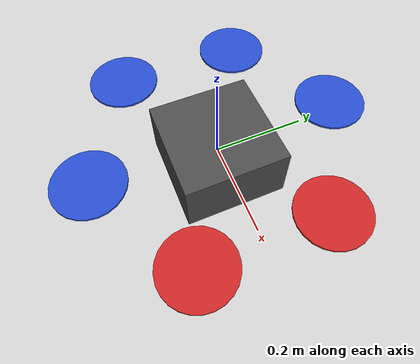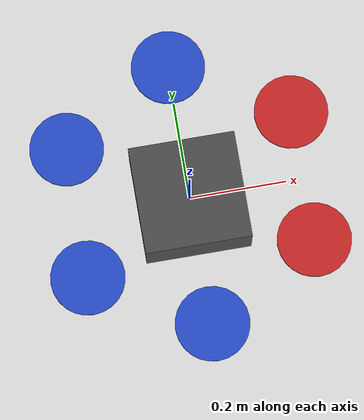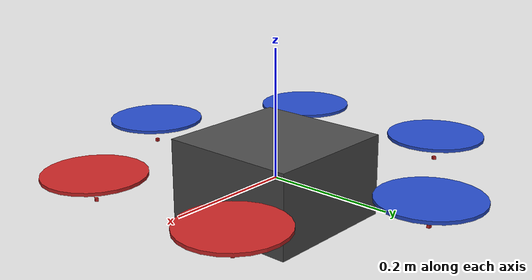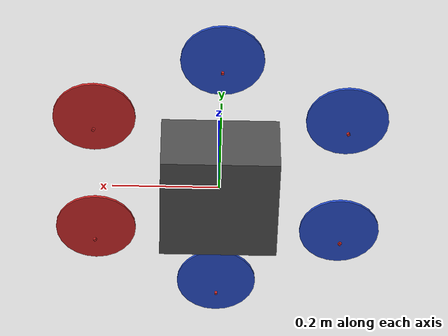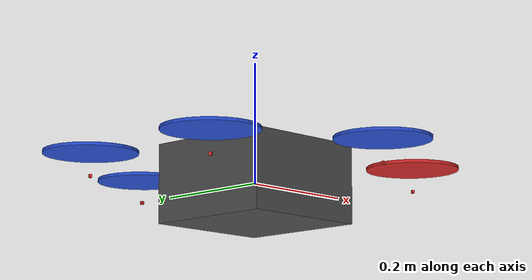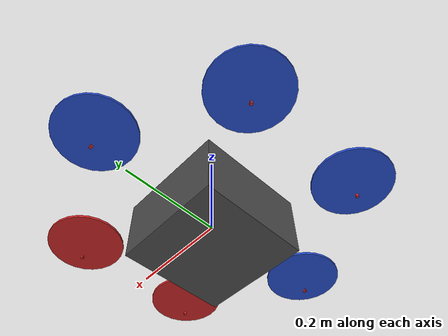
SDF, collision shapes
<sdf version='1.6'>
  <model name='mockingbird'>
    <link name='mockingbird/base_link'>
      <pose frame=''>0 0 0 0 -0 0</pose>
      <inertial>
        <pose frame=''>0 0 0 0 -0 0</pose>
        <mass>1.63543</mass>
        <inertia>
          <ixx>0.0126419</ixx>
          <ixy>4.49001e-05</ixy>
          <ixz>0.000123606</ixz>
          <iyy>0.0127501</iyy>
          <iyz>-1.81831e-05</iyz>
          <izz>0.0230749</izz>
        </inertia>
      </inertial>
      <collision name='mockingbird/base_link_inertia_collision'>
        <pose frame=''>0 0 0 0 -0 0</pose>
        <geometry>
          <box>
            <size>0.22 0.22 0.13</size>
          </box>
        </geometry>
        <surface>
          <contact>
            <ode/>
          </contact>
          <friction>
            <ode/>
          </friction>
        </surface>
      </collision>
      <visual name='mockingbird/base_link_inertia_visual'>
        <pose frame=''>0 0 0 0 -0 0</pose>
        <geometry>
          <mesh>
            <scale>1 1 1</scale>
            <uri>model://rotors_description/meshes/mockingbird_core.dae</uri>
          </mesh>
        </geometry>
        <material>
          <script>
            <name>Gazebo/DarkGrey</name>
            <uri>file://media/materials/scripts/gazebo.material</uri>
          </script>
        </material>
      </visual>
      <gravity>1</gravity>
      <velocity_decay/>
      <self_collide>0</self_collide>
    </link>
    <link name='mockingbird/rotor_unit_0'>
      <pose frame=''>0.233827 0.135 0 0 -0 0.523599</pose>
      <inertial>
        <pose frame=''>0 0 0 0 -0 0</pose>
        <mass>0.097214</mass>
        <inertia>
          <ixx>0.000247269</ixx>
          <ixy>0</ixy>
          <ixz>0</ixz>
          <iyy>0.000332246</iyy>
          <iyz>0</iyz>
          <izz>0.000247859</izz>
        </inertia>
      </inertial>
      <collision name='mockingbird/rotor_unit_0_collision'>
        <pose frame=''>0 0 0 0 -0 0</pose>
        <geometry>
          <box>
            <size>0.005 0.005 0.005</size>
          </box>
        </geometry>
        <surface>
          <contact>
            <ode/>
          </contact>
          <friction>
            <ode/>
          </friction>
        </surface>
      </collision>
      <visual name='mockingbird/rotor_unit_0_visual'>
        <pose frame=''>0 0 0 0 -0 0</pose>
        <geometry>
          <mesh>
            <scale>1 1 1</scale>
            <uri>model://rotors_description/meshes/mockingbird_rotorunit.dae</uri>
          </mesh>
        </geometry>
        <material>
          <script>
            <name>Gazebo/Red</name>
            <uri>file://media/materials/scripts/gazebo.material</uri>
          </script>
        </material>
      </visual>
      <gravity>1</gravity>
      <velocity_decay/>
      <self_collide>0</self_collide>
    </link>
    <joint name='rotor_unit_0_revolutejoint' type='revolute'>
      <child>mockingbird/rotor_unit_0</child>
      <parent>mockingbird/base_link</parent>
      <axis>
        <xyz>0.866025 0.5 0</xyz>
        <limit>
          <lower>-0.3</lower>
          <upper>0.3</upper>
          <effort>1000</effort>
          <velocity>4</velocity>
        </limit>
        <dynamics>
          <spring_reference>0</spring_reference>
          <spring_stiffness>0</spring_stiffness>
        </dynamics>
        <use_parent_model_frame>1</use_parent_model_frame>
      </axis>
    </joint>
    <link name='mockingbird/rotor_0'>
      <pose frame=''>0.233827 0.135 0.038 0 -0 0.523599</pose>
      <inertial>
        <pose frame=''>0 0 0 0 -0 0</pose>
        <mass>0.004</mass>
        <inertia>
          <ixx>7.8e-07</ixx>
          <ixy>0</ixy>
          <ixz>0</ixz>
          <iyy>1.95375e-05</iyy>
          <iyz>0</iyz>
          <izz>2.02575e-05</izz>
        </inertia>
      </inertial>
      <collision name='mockingbird/rotor_0_collision'>
        <pose frame=''>0 0 0 0 -0 0</pose>
        <geometry>
          <cylinder>
            <length>0.005</length>
            <radius>0.0765</radius>
          </cylinder>
        </geometry>
        <surface>
          <contact>
            <ode/>
          </contact>
          <friction>
            <ode/>
          </friction>
        </surface>
      </collision>
      <visual name='mockingbird/rotor_0_visual'>
        <pose frame=''>0 0 0 0 -0 0</pose>
        <geometry>
          <mesh>
            <scale>0.0765 0.0765 0.0765</scale>
            <uri>model://rotors_description/meshes/propeller_ccw.dae</uri>
          </mesh>
        </geometry>
        <material>
          <script>
            <name>Gazebo/Red</name>
            <uri>file://media/materials/scripts/gazebo.material</uri>
          </script>
        </material>
      </visual>
      <gravity>1</gravity>
      <velocity_decay/>
      <self_collide>0</self_collide>
    </link>
    <joint name='mockingbird/rotor_0_joint' type='revolute'>
      <child>mockingbird/rotor_0</child>
      <parent>mockingbird/rotor_unit_0</parent>
      <axis>
        <xyz>0 0 1</xyz>
        <limit>
          <lower>-1e+16</lower>
          <upper>1e+16</upper>
        </limit>
        <dynamics>
          <spring_reference>0</spring_reference>
          <spring_stiffness>0</spring_stiffness>
        </dynamics>
        <use_parent_model_frame>1</use_parent_model_frame>
      </axis>
    </joint>
    <link name='mockingbird/rotor_unit_1'>
      <pose frame=''>0 0.27 0 0 -0 1.5708</pose>
      <inertial>
        <pose frame=''>0 0 0 0 -0 0</pose>
        <mass>0.097214</mass>
        <inertia>
          <ixx>0.000247269</ixx>
          <ixy>0</ixy>
          <ixz>0</ixz>
          <iyy>0.000332246</iyy>
          <iyz>0</iyz>
          <izz>0.000247859</izz>
        </inertia>
      </inertial>
      <collision name='mockingbird/rotor_unit_1_collision'>
        <pose frame=''>0 0 0 0 -0 0</pose>
        <geometry>
          <box>
            <size>0.005 0.005 0.005</size>
          </box>
        </geometry>
        <surface>
          <contact>
            <ode/>
          </contact>
          <friction>
            <ode/>
          </friction>
        </surface>
      </collision>
      <visual name='mockingbird/rotor_unit_1_visual'>
        <pose frame=''>0 0 0 0 -0 0</pose>
        <geometry>
          <mesh>
            <scale>1 1 1</scale>
            <uri>model://rotors_description/meshes/mockingbird_rotorunit.dae</uri>
          </mesh>
        </geometry>
        <material>
          <script>
            <name>Gazebo/Red</name>
            <uri>file://media/materials/scripts/gazebo.material</uri>
          </script>
        </material>
      </visual>
      <gravity>1</gravity>
      <velocity_decay/>
      <self_collide>0</self_collide>
    </link>
    <joint name='rotor_unit_1_revolutejoint' type='revolute'>
      <child>mockingbird/rotor_unit_1</child>
      <parent>mockingbird/base_link</parent>
      <axis>
        <xyz>0 1 0</xyz>
        <limit>
          <lower>-0.3</lower>
          <upper>0.3</upper>
          <effort>1000</effort>
          <velocity>4</velocity>
        </limit>
        <dynamics>
          <spring_reference>0</spring_reference>
          <spring_stiffness>0</spring_stiffness>
        </dynamics>
        <use_parent_model_frame>1</use_parent_model_frame>
      </axis>
    </joint>
    <link name='mockingbird/rotor_1'>
      <pose frame=''>0 0.27 0.038 0 -0 1.5708</pose>
      <inertial>
        <pose frame=''>0 0 0 0 -0 0</pose>
        <mass>0.004</mass>
        <inertia>
          <ixx>7.8e-07</ixx>
          <ixy>0</ixy>
          <ixz>0</ixz>
          <iyy>1.95375e-05</iyy>
          <iyz>0</iyz>
          <izz>2.02575e-05</izz>
        </inertia>
      </inertial>
      <collision name='mockingbird/rotor_1_collision'>
        <pose frame=''>0 0 0 0 -0 0</pose>
        <geometry>
          <cylinder>
            <length>0.005</length>
            <radius>0.0765</radius>
          </cylinder>
        </geometry>
        <surface>
          <contact>
            <ode/>
          </contact>
          <friction>
            <ode/>
          </friction>
        </surface>
      </collision>
      <visual name='mockingbird/rotor_1_visual'>
        <pose frame=''>0 0 0 0 -0 0</pose>
        <geometry>
          <mesh>
            <scale>0.0765 0.0765 0.0765</scale>
            <uri>model://rotors_description/meshes/propeller_cw.dae</uri>
          </mesh>
        </geometry>
        <material>
          <script>
            <name>Gazebo/Blue</name>
            <uri>file://media/materials/scripts/gazebo.material</uri>
          </script>
        </material>
      </visual>
      <gravity>1</gravity>
      <velocity_decay/>
      <self_collide>0</self_collide>
    </link>
    <joint name='mockingbird/rotor_1_joint' type='revolute'>
      <child>mockingbird/rotor_1</child>
      <parent>mockingbird/rotor_unit_1</parent>
      <axis>
        <xyz>0 0 1</xyz>
        <limit>
          <lower>-1e+16</lower>
          <upper>1e+16</upper>
        </limit>
        <dynamics>
          <spring_reference>0</spring_reference>
          <spring_stiffness>0</spring_stiffness>
        </dynamics>
        <use_parent_model_frame>1</use_parent_model_frame>
      </axis>
    </joint>
    <link name='mockingbird/rotor_unit_2'>
      <pose frame=''>-0.233827 0.135 0 0 -0 2.61799</pose>
      <inertial>
        <pose frame=''>0 0 0 0 -0 0</pose>
        <mass>0.097214</mass>
        <inertia>
          <ixx>0.000247269</ixx>
          <ixy>0</ixy>
          <ixz>0</ixz>
          <iyy>0.000332246</iyy>
          <iyz>0</iyz>
          <izz>0.000247859</izz>
        </inertia>
      </inertial>
      <collision name='mockingbird/rotor_unit_2_collision'>
        <pose frame=''>0 0 0 0 -0 0</pose>
        <geometry>
          <box>
            <size>0.005 0.005 0.005</size>
          </box>
        </geometry>
        <surface>
          <contact>
            <ode/>
          </contact>
          <friction>
            <ode/>
          </friction>
        </surface>
      </collision>
      <visual name='mockingbird/rotor_unit_2_visual'>
        <pose frame=''>0 0 0 0 -0 0</pose>
        <geometry>
          <mesh>
            <scale>1 1 1</scale>
            <uri>model://rotors_description/meshes/mockingbird_rotorunit.dae</uri>
          </mesh>
        </geometry>
        <material>
          <script>
            <name>Gazebo/Red</name>
            <uri>file://media/materials/scripts/gazebo.material</uri>
          </script>
        </material>
      </visual>
      <gravity>1</gravity>
      <velocity_decay/>
      <self_collide>0</self_collide>
    </link>
    <joint name='rotor_unit_2_revolutejoint' type='revolute'>
      <child>mockingbird/rotor_unit_2</child>
      <parent>mockingbird/base_link</parent>
      <axis>
        <xyz>-0.866025 0.5 0</xyz>
        <limit>
          <lower>-0.3</lower>
          <upper>0.3</upper>
          <effort>1000</effort>
          <velocity>4</velocity>
        </limit>
        <dynamics>
          <spring_reference>0</spring_reference>
          <spring_stiffness>0</spring_stiffness>
        </dynamics>
        <use_parent_model_frame>1</use_parent_model_frame>
      </axis>
    </joint>
    <link name='mockingbird/rotor_2'>
      <pose frame=''>-0.233827 0.135 0.038 0 -0 2.61799</pose>
      <inertial>
        <pose frame=''>0 0 0 0 -0 0</pose>
        <mass>0.004</mass>
        <inertia>
          <ixx>7.8e-07</ixx>
          <ixy>0</ixy>
          <ixz>0</ixz>
          <iyy>1.95375e-05</iyy>
          <iyz>0</iyz>
          <izz>2.02575e-05</izz>
        </inertia>
      </inertial>
      <collision name='mockingbird/rotor_2_collision'>
        <pose frame=''>0 0 0 0 -0 0</pose>
        <geometry>
          <cylinder>
            <length>0.005</length>
            <radius>0.0765</radius>
          </cylinder>
        </geometry>
        <surface>
          <contact>
            <ode/>
          </contact>
          <friction>
            <ode/>
          </friction>
        </surface>
      </collision>
      <visual name='mockingbird/rotor_2_visual'>
        <pose frame=''>0 0 0 0 -0 0</pose>
        <geometry>
          <mesh>
            <scale>0.0765 0.0765 0.0765</scale>
            <uri>model://rotors_description/meshes/propeller_ccw.dae</uri>
          </mesh>
        </geometry>
        <material>
          <script>
            <name>Gazebo/Blue</name>
            <uri>file://media/materials/scripts/gazebo.material</uri>
          </script>
        </material>
      </visual>
      <gravity>1</gravity>
      <velocity_decay/>
      <self_collide>0</self_collide>
    </link>
    <joint name='mockingbird/rotor_2_joint' type='revolute'>
      <child>mockingbird/rotor_2</child>
      <parent>mockingbird/rotor_unit_2</parent>
      <axis>
        <xyz>0 0 1</xyz>
        <limit>
          <lower>-1e+16</lower>
          <upper>1e+16</upper>
        </limit>
        <dynamics>
          <spring_reference>0</spring_reference>
          <spring_stiffness>0</spring_stiffness>
        </dynamics>
        <use_parent_model_frame>1</use_parent_model_frame>
      </axis>
    </joint>
    <link name='mockingbird/rotor_unit_3'>
      <pose frame=''>-0.233827 -0.135 0 0 -0 -2.61799</pose>
      <inertial>
        <pose frame=''>0 0 0 0 -0 0</pose>
        <mass>0.097214</mass>
        <inertia>
          <ixx>0.000247269</ixx>
          <ixy>0</ixy>
          <ixz>0</ixz>
          <iyy>0.000332246</iyy>
          <iyz>0</iyz>
          <izz>0.000247859</izz>
        </inertia>
      </inertial>
      <collision name='mockingbird/rotor_unit_3_collision'>
        <pose frame=''>0 0 0 0 -0 0</pose>
        <geometry>
          <box>
            <size>0.005 0.005 0.005</size>
          </box>
        </geometry>
        <surface>
          <contact>
            <ode/>
          </contact>
          <friction>
            <ode/>
          </friction>
        </surface>
      </collision>
      <visual name='mockingbird/rotor_unit_3_visual'>
        <pose frame=''>0 0 0 0 -0 0</pose>
        <geometry>
          <mesh>
            <scale>1 1 1</scale>
            <uri>model://rotors_description/meshes/mockingbird_rotorunit.dae</uri>
          </mesh>
        </geometry>
        <material>
          <script>
            <name>Gazebo/Red</name>
            <uri>file://media/materials/scripts/gazebo.material</uri>
          </script>
        </material>
      </visual>
      <gravity>1</gravity>
      <velocity_decay/>
      <self_collide>0</self_collide>
    </link>
    <joint name='rotor_unit_3_revolutejoint' type='revolute'>
      <child>mockingbird/rotor_unit_3</child>
      <parent>mockingbird/base_link</parent>
      <axis>
        <xyz>-0.866025 -0.5 0</xyz>
        <limit>
          <lower>-0.3</lower>
          <upper>0.3</upper>
          <effort>1000</effort>
          <velocity>4</velocity>
        </limit>
        <dynamics>
          <spring_reference>0</spring_reference>
          <spring_stiffness>0</spring_stiffness>
        </dynamics>
        <use_parent_model_frame>1</use_parent_model_frame>
      </axis>
    </joint>
    <link name='mockingbird/rotor_3'>
      <pose frame=''>-0.233827 -0.135 0.038 0 -0 -2.61799</pose>
      <inertial>
        <pose frame=''>0 0 0 0 -0 0</pose>
        <mass>0.004</mass>
        <inertia>
          <ixx>7.8e-07</ixx>
          <ixy>0</ixy>
          <ixz>0</ixz>
          <iyy>1.95375e-05</iyy>
          <iyz>0</iyz>
          <izz>2.02575e-05</izz>
        </inertia>
      </inertial>
      <collision name='mockingbird/rotor_3_collision'>
        <pose frame=''>0 0 0 0 -0 0</pose>
        <geometry>
          <cylinder>
            <length>0.005</length>
            <radius>0.0765</radius>
          </cylinder>
        </geometry>
        <surface>
          <contact>
            <ode/>
          </contact>
          <friction>
            <ode/>
          </friction>
        </surface>
      </collision>
      <visual name='mockingbird/rotor_3_visual'>
        <pose frame=''>0 0 0 0 -0 0</pose>
        <geometry>
          <mesh>
            <scale>0.0765 0.0765 0.0765</scale>
            <uri>model://rotors_description/meshes/propeller_cw.dae</uri>
          </mesh>
        </geometry>
        <material>
          <script>
            <name>Gazebo/Blue</name>
            <uri>file://media/materials/scripts/gazebo.material</uri>
          </script>
        </material>
      </visual>
      <gravity>1</gravity>
      <velocity_decay/>
      <self_collide>0</self_collide>
    </link>
    <joint name='mockingbird/rotor_3_joint' type='revolute'>
      <child>mockingbird/rotor_3</child>
      <parent>mockingbird/rotor_unit_3</parent>
      <axis>
        <xyz>0 0 1</xyz>
        <limit>
          <lower>-1e+16</lower>
          <upper>1e+16</upper>
        </limit>
        <dynamics>
          <spring_reference>0</spring_reference>
          <spring_stiffness>0</spring_stiffness>
        </dynamics>
        <use_parent_model_frame>1</use_parent_model_frame>
      </axis>
    </joint>
    <link name='mockingbird/rotor_unit_4'>
      <pose frame=''>0 -0.27 0 0 -0 -1.5708</pose>
      <inertial>
        <pose frame=''>0 0 0 0 -0 0</pose>
        <mass>0.097214</mass>
        <inertia>
          <ixx>0.000247269</ixx>
          <ixy>0</ixy>
          <ixz>0</ixz>
          <iyy>0.000332246</iyy>
          <iyz>0</iyz>
          <izz>0.000247859</izz>
        </inertia>
      </inertial>
      <collision name='mockingbird/rotor_unit_4_collision'>
        <pose frame=''>0 0 0 0 -0 0</pose>
        <geometry>
          <box>
            <size>0.005 0.005 0.005</size>
          </box>
        </geometry>
        <surface>
          <contact>
            <ode/>
          </contact>
          <friction>
            <ode/>
          </friction>
        </surface>
      </collision>
      <visual name='mockingbird/rotor_unit_4_visual'>
        <pose frame=''>0 0 0 0 -0 0</pose>
        <geometry>
          <mesh>
            <scale>1 1 1</scale>
            <uri>model://rotors_description/meshes/mockingbird_rotorunit.dae</uri>
          </mesh>
        </geometry>
        <material>
          <script>
            <name>Gazebo/Red</name>
            <uri>file://media/materials/scripts/gazebo.material</uri>
          </script>
        </material>
      </visual>
      <gravity>1</gravity>
      <velocity_decay/>
      <self_collide>0</self_collide>
    </link>
    <joint name='rotor_unit_4_revolutejoint' type='revolute'>
      <child>mockingbird/rotor_unit_4</child>
      <parent>mockingbird/base_link</parent>
      <axis>
        <xyz>-0 -1 0</xyz>
        <limit>
          <lower>-0.3</lower>
          <upper>0.3</upper>
          <effort>1000</effort>
          <velocity>4</velocity>
        </limit>
        <dynamics>
          <spring_reference>0</spring_reference>
          <spring_stiffness>0</spring_stiffness>
        </dynamics>
        <use_parent_model_frame>1</use_parent_model_frame>
      </axis>
    </joint>
    <link name='mockingbird/rotor_4'>
      <pose frame=''>0 -0.27 0.038 0 -0 -1.5708</pose>
      <inertial>
        <pose frame=''>0 0 0 0 -0 0</pose>
        <mass>0.004</mass>
        <inertia>
          <ixx>7.8e-07</ixx>
          <ixy>0</ixy>
          <ixz>0</ixz>
          <iyy>1.95375e-05</iyy>
          <iyz>0</iyz>
          <izz>2.02575e-05</izz>
        </inertia>
      </inertial>
      <collision name='mockingbird/rotor_4_collision'>
        <pose frame=''>0 0 0 0 -0 0</pose>
        <geometry>
          <cylinder>
            <length>0.005</length>
            <radius>0.0765</radius>
          </cylinder>
        </geometry>
        <surface>
          <contact>
            <ode/>
          </contact>
          <friction>
            <ode/>
          </friction>
        </surface>
      </collision>
      <visual name='mockingbird/rotor_4_visual'>
        <pose frame=''>0 0 0 0 -0 0</pose>
        <geometry>
          <mesh>
            <scale>0.0765 0.0765 0.0765</scale>
            <uri>model://rotors_description/meshes/propeller_ccw.dae</uri>
          </mesh>
        </geometry>
        <material>
          <script>
            <name>Gazebo/Blue</name>
            <uri>file://media/materials/scripts/gazebo.material</uri>
          </script>
        </material>
      </visual>
      <gravity>1</gravity>
      <velocity_decay/>
      <self_collide>0</self_collide>
    </link>
    <joint name='mockingbird/rotor_4_joint' type='revolute'>
      <child>mockingbird/rotor_4</child>
      <parent>mockingbird/rotor_unit_4</parent>
      <axis>
        <xyz>0 0 1</xyz>
        <limit>
          <lower>-1e+16</lower>
          <upper>1e+16</upper>
        </limit>
        <dynamics>
          <spring_reference>0</spring_reference>
          <spring_stiffness>0</spring_stiffness>
        </dynamics>
        <use_parent_model_frame>1</use_parent_model_frame>
      </axis>
    </joint>
    <link name='mockingbird/rotor_unit_5'>
      <pose frame=''>0.233827 -0.135 0 0 -0 -0.523599</pose>
      <inertial>
        <pose frame=''>0 0 0 0 -0 0</pose>
        <mass>0.097214</mass>
        <inertia>
          <ixx>0.000247269</ixx>
          <ixy>0</ixy>
          <ixz>0</ixz>
          <iyy>0.000332246</iyy>
          <iyz>0</iyz>
          <izz>0.000247859</izz>
        </inertia>
      </inertial>
      <collision name='mockingbird/rotor_unit_5_collision'>
        <pose frame=''>0 0 0 0 -0 0</pose>
        <geometry>
          <box>
            <size>0.005 0.005 0.005</size>
          </box>
        </geometry>
        <surface>
          <contact>
            <ode/>
          </contact>
          <friction>
            <ode/>
          </friction>
        </surface>
      </collision>
      <visual name='mockingbird/rotor_unit_5_visual'>
        <pose frame=''>0 0 0 0 -0 0</pose>
        <geometry>
          <mesh>
            <scale>1 1 1</scale>
            <uri>model://rotors_description/meshes/mockingbird_rotorunit.dae</uri>
          </mesh>
        </geometry>
        <material>
          <script>
            <name>Gazebo/Red</name>
            <uri>file://media/materials/scripts/gazebo.material</uri>
          </script>
        </material>
      </visual>
      <gravity>1</gravity>
      <velocity_decay/>
      <self_collide>0</self_collide>
    </link>
    <joint name='rotor_unit_5_revolutejoint' type='revolute'>
      <child>mockingbird/rotor_unit_5</child>
      <parent>mockingbird/base_link</parent>
      <axis>
        <xyz>0.866025 -0.5 0</xyz>
        <limit>
          <lower>-0.3</lower>
          <upper>0.3</upper>
          <effort>1000</effort>
          <velocity>4</velocity>
        </limit>
        <dynamics>
          <spring_reference>0</spring_reference>
          <spring_stiffness>0</spring_stiffness>
        </dynamics>
        <use_parent_model_frame>1</use_parent_model_frame>
      </axis>
    </joint>
    <link name='mockingbird/rotor_5'>
      <pose frame=''>0.233827 -0.135 0.038 0 -0 -0.523599</pose>
      <inertial>
        <pose frame=''>0 0 0 0 -0 0</pose>
        <mass>0.004</mass>
        <inertia>
          <ixx>7.8e-07</ixx>
          <ixy>0</ixy>
          <ixz>0</ixz>
          <iyy>1.95375e-05</iyy>
          <iyz>0</iyz>
          <izz>2.02575e-05</izz>
        </inertia>
      </inertial>
      <collision name='mockingbird/rotor_5_collision'>
        <pose frame=''>0 0 0 0 -0 0</pose>
        <geometry>
          <cylinder>
            <length>0.005</length>
            <radius>0.0765</radius>
          </cylinder>
        </geometry>
        <surface>
          <contact>
            <ode/>
          </contact>
          <friction>
            <ode/>
          </friction>
        </surface>
      </collision>
      <visual name='mockingbird/rotor_5_visual'>
        <pose frame=''>0 0 0 0 -0 0</pose>
        <geometry>
          <mesh>
            <scale>0.0765 0.0765 0.0765</scale>
            <uri>model://rotors_description/meshes/propeller_cw.dae</uri>
          </mesh>
        </geometry>
        <material>
          <script>
            <name>Gazebo/Red</name>
            <uri>file://media/materials/scripts/gazebo.material</uri>
          </script>
        </material>
      </visual>
      <gravity>1</gravity>
      <velocity_decay/>
      <self_collide>0</self_collide>
    </link>
    <joint name='mockingbird/rotor_5_joint' type='revolute'>
      <child>mockingbird/rotor_5</child>
      <parent>mockingbird/rotor_unit_5</parent>
      <axis>
        <xyz>0 0 1</xyz>
        <limit>
          <lower>-1e+16</lower>
          <upper>1e+16</upper>
        </limit>
        <dynamics>
          <spring_reference>0</spring_reference>
          <spring_stiffness>0</spring_stiffness>
        </dynamics>
        <use_parent_model_frame>1</use_parent_model_frame>
      </axis>
    </joint>
    <plugin name='multirotor_base_plugin' filename='librotors_gazebo_multirotor_base_plugin.so'>
      <robotNamespace>mockingbird</robotNamespace>
      <linkName>mockingbird/base_link</linkName>
      <rotorVelocitySlowdownSim>10</rotorVelocitySlowdownSim>
    </plugin>
    <plugin name='mockingbird_left_motor_model' filename='librotors_gazebo_motor_model.so'>
      <robotNamespace>mockingbird</robotNamespace>
      <jointName>mockingbird/rotor_0_joint</jointName>
      <linkName>mockingbird/rotor_0</linkName>
      <turningDirection>ccw</turningDirection>
      <timeConstantUp>0.0125</timeConstantUp>
      <timeConstantDown>0.025</timeConstantDown>
      <maxRotVelocity>838</maxRotVelocity>
      <motorConstant>1.0258296e-05</motorConstant>
      <momentConstant>0.016</momentConstant>
      <commandSubTopic>gazebo/command/motor_speed</commandSubTopic>
      <motorNumber>0</motorNumber>
      <rotorDragCoefficient>8.06428e-05</rotorDragCoefficient>
      <rollingMomentCoefficient>1e-06</rollingMomentCoefficient>
      <motorSpeedPubTopic>motor_speed/0</motorSpeedPubTopic>
      <rotorVelocitySlowdownSim>10</rotorVelocitySlowdownSim>
    </plugin>
    <plugin name='mockingbird_left_motor_model' filename='librotors_gazebo_motor_model.so'>
      <robotNamespace>mockingbird</robotNamespace>
      <jointName>mockingbird/rotor_1_joint</jointName>
      <linkName>mockingbird/rotor_1</linkName>
      <turningDirection>cw</turningDirection>
      <timeConstantUp>0.0125</timeConstantUp>
      <timeConstantDown>0.025</timeConstantDown>
      <maxRotVelocity>838</maxRotVelocity>
      <motorConstant>1.0258296e-05</motorConstant>
      <momentConstant>0.016</momentConstant>
      <commandSubTopic>gazebo/command/motor_speed</commandSubTopic>
      <motorNumber>1</motorNumber>
      <rotorDragCoefficient>8.06428e-05</rotorDragCoefficient>
      <rollingMomentCoefficient>1e-06</rollingMomentCoefficient>
      <motorSpeedPubTopic>motor_speed/1</motorSpeedPubTopic>
      <rotorVelocitySlowdownSim>10</rotorVelocitySlowdownSim>
    </plugin>
    <plugin name='mockingbird_back_left_motor_model' filename='librotors_gazebo_motor_model.so'>
      <robotNamespace>mockingbird</robotNamespace>
      <jointName>mockingbird/rotor_2_joint</jointName>
      <linkName>mockingbird/rotor_2</linkName>
      <turningDirection>ccw</turningDirection>
      <timeConstantUp>0.0125</timeConstantUp>
      <timeConstantDown>0.025</timeConstantDown>
      <maxRotVelocity>838</maxRotVelocity>
      <motorConstant>1.0258296e-05</motorConstant>
      <momentConstant>0.016</momentConstant>
      <commandSubTopic>gazebo/command/motor_speed</commandSubTopic>
      <motorNumber>2</motorNumber>
      <rotorDragCoefficient>8.06428e-05</rotorDragCoefficient>
      <rollingMomentCoefficient>1e-06</rollingMomentCoefficient>
      <motorSpeedPubTopic>motor_speed/2</motorSpeedPubTopic>
      <rotorVelocitySlowdownSim>10</rotorVelocitySlowdownSim>
    </plugin>
    <plugin name='mockingbird_back_right_motor_model' filename='librotors_gazebo_motor_model.so'>
      <robotNamespace>mockingbird</robotNamespace>
      <jointName>mockingbird/rotor_3_joint</jointName>
      <linkName>mockingbird/rotor_3</linkName>
      <turningDirection>cw</turningDirection>
      <timeConstantUp>0.0125</timeConstantUp>
      <timeConstantDown>0.025</timeConstantDown>
      <maxRotVelocity>838</maxRotVelocity>
      <motorConstant>1.0258296e-05</motorConstant>
      <momentConstant>0.016</momentConstant>
      <commandSubTopic>gazebo/command/motor_speed</commandSubTopic>
      <motorNumber>3</motorNumber>
      <rotorDragCoefficient>8.06428e-05</rotorDragCoefficient>
      <rollingMomentCoefficient>1e-06</rollingMomentCoefficient>
      <motorSpeedPubTopic>motor_speed/3</motorSpeedPubTopic>
      <rotorVelocitySlowdownSim>10</rotorVelocitySlowdownSim>
    </plugin>
    <plugin name='mockingbird_right_motor_model' filename='librotors_gazebo_motor_model.so'>
      <robotNamespace>mockingbird</robotNamespace>
      <jointName>mockingbird/rotor_4_joint</jointName>
      <linkName>mockingbird/rotor_4</linkName>
      <turningDirection>ccw</turningDirection>
      <timeConstantUp>0.0125</timeConstantUp>
      <timeConstantDown>0.025</timeConstantDown>
      <maxRotVelocity>838</maxRotVelocity>
      <motorConstant>1.0258296e-05</motorConstant>
      <momentConstant>0.016</momentConstant>
      <commandSubTopic>gazebo/command/motor_speed</commandSubTopic>
      <motorNumber>4</motorNumber>
      <rotorDragCoefficient>8.06428e-05</rotorDragCoefficient>
      <rollingMomentCoefficient>1e-06</rollingMomentCoefficient>
      <motorSpeedPubTopic>motor_speed/4</motorSpeedPubTopic>
      <rotorVelocitySlowdownSim>10</rotorVelocitySlowdownSim>
    </plugin>
    <static>0</static>
    <plugin name='mockingbird_front_right_motor_model' filename='librotors_gazebo_motor_model.so'>
      <robotNamespace>mockingbird</robotNamespace>
      <jointName>mockingbird/rotor_5_joint</jointName>
      <linkName>mockingbird/rotor_5</linkName>
      <turningDirection>cw</turningDirection>
      <timeConstantUp>0.0125</timeConstantUp>
      <timeConstantDown>0.025</timeConstantDown>
      <maxRotVelocity>838</maxRotVelocity>
      <motorConstant>1.0258296e-05</motorConstant>
      <momentConstant>0.016</momentConstant>
      <commandSubTopic>gazebo/command/motor_speed</commandSubTopic>
      <motorNumber>5</motorNumber>
      <rotorDragCoefficient>8.06428e-05</rotorDragCoefficient>
      <rollingMomentCoefficient>1e-06</rollingMomentCoefficient>
      <motorSpeedPubTopic>motor_speed/5</motorSpeedPubTopic>
      <rotorVelocitySlowdownSim>10</rotorVelocitySlowdownSim>
    </plugin>
  </model>
</sdf>
